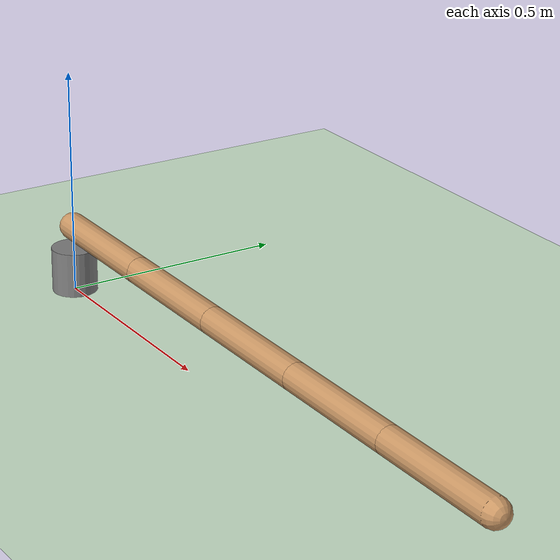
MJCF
<mujoco model="5_arm_pos">
  <compiler angle="radian"/>

  <option integrator="RK4"/>

  <visual>
    <map znear="0.02"/>
  </visual>

  <default>
        <default class="link1_main"/>
    <default class="link2_main"/>
    <default class="link3_main"/>
    <default class="link4_main"/>
    <default class="link5_main"/>
  </default>

  <asset>
    <texture type="skybox" colorspace="auto" builtin="gradient" rgb1="0.4 0.5 0.6" rgb2="0 0 0" width="100" height="600"/>
    <texture type="cube" colorspace="auto" name="texgeom" builtin="flat" mark="cross" rgb1="0.8 0.6 0.4" rgb2="0.8 0.6 0.4" markrgb="1 1 1" width="127" height="762"/>
    <texture type="2d" colorspace="auto" name="texplane" builtin="checker" rgb1="0 0 0" rgb2="0.8 0.8 0.8" width="100" height="100"/>
    <material name="MatPlane" texture="texplane" texrepeat="60 60" specular="1" shininess="1" reflectance="0.5"/>
    <material name="geom" texture="texgeom" texuniform="true"/>
  </asset>

  <worldbody>
    <geom name="floor" size="20 20 0.125" type="plane" material="MatPlane" rgba="0.8 0.9 0.8 1"/>
    <light pos="0 0 1.3" dir="0 0 -1" type="directional" cutoff="100" exponent="1" diffuse="1 1 1" specular="0.1 0.1 0.1"/>
    <body name="base" pos="0 0 0.05">
      <geom name="base_geom" size="0.05 0.05" type="cylinder"/>
      <site name="tip" pos="0 0 0.1" size="0.01"/>
      <body name="link1_link" pos="0 0 0.1">
        <joint name="link1_joint" pos="0 0 0" axis="0 0 1" limited="false" armature="1" damping="3"/>
        <geom name="link1_geom" size="0.03 0.15" pos="0.15 0 0" quat="0.707107 0 -0.707107 0" type="capsule" condim="1" friction="0.9" solimp="0.8 0.8 0.01" margin="0.001" density="300" rgba="0.8 0.6 0.4 1"/>
        <site name="link1_tip" pos="0.3 0 0" size="0.01" rgba="0 1 0 1"/>
        <body name="link2_link" pos="0.3 0 0">
          <joint name="link2_joint" pos="0 0 0" axis="0 1 0" limited="false" armature="1" damping="3"/>
          <geom name="link2_geom" size="0.03 0.15" pos="0.15 0 0" quat="0.707107 0 -0.707107 0" type="capsule" condim="1" friction="0.9" solimp="0.8 0.8 0.01" margin="0.001" density="300" rgba="0.8 0.6 0.4 1"/>
          <site name="link2_tip" pos="0.3 0 0" size="0.01" rgba="0 1 0 1"/>
          <body name="link3_link" pos="0.3 0 0">
            <joint name="link3_joint" pos="0 0 0" axis="0 0 1" limited="false" armature="1" damping="3"/>
            <geom name="link3_geom" size="0.03 0.15" pos="0.15 0 0" quat="0.707107 0 -0.707107 0" type="capsule" condim="1" friction="0.9" solimp="0.8 0.8 0.01" margin="0.001" density="300" rgba="0.8 0.6 0.4 1"/>
            <site name="link3_tip" pos="0.3 0 0" size="0.01" rgba="0 1 0 1"/>
            <body name="link4_link" pos="0.3 0 0">
              <joint name="link4_joint" pos="0 0 0" axis="0 1 0" limited="false" armature="1" damping="3"/>
              <geom name="link4_geom" size="0.03 0.15" pos="0.15 0 0" quat="0.707107 0 -0.707107 0" type="capsule" condim="1" friction="0.9" solimp="0.8 0.8 0.01" margin="0.001" density="300" rgba="0.8 0.6 0.4 1"/>
              <site name="link4_tip" pos="0.3 0 0" size="0.01" rgba="0 1 0 1"/>
              <body name="link5_link" pos="0.3 0 0">
                <joint name="link5_joint" pos="0 0 0" axis="0 0 1" limited="false" armature="1" damping="3"/>
                <geom name="link5_geom" size="0.03 0.15" pos="0.15 0 0" quat="0.707107 0 -0.707107 0" type="capsule" condim="1" friction="0.9" solimp="0.8 0.8 0.01" margin="0.001" density="300" rgba="0.8 0.6 0.4 1"/>
                <site name="link5_ee_frame" pos="0.3 0 0" size="0.01" rgba="0 1 0 1"/>
              </body>
            </body>
          </body>
        </body>
      </body>
    </body>
  </worldbody>

  <actuator>
    <general name="link1_act" joint="link1_joint" ctrllimited="true" ctrlrange="-3.14159 3.14159" biastype="affine" gainprm="403.74" biasprm="0 -403.74 -37.37"/>
    <general name="link2_act" joint="link2_joint" ctrllimited="true" ctrlrange="-3.14159 3.14159" biastype="affine" gainprm="403.74" biasprm="0 -403.74 -37.37"/>
    <general name="link3_act" joint="link3_joint" ctrllimited="true" ctrlrange="-3.14159 3.14159" biastype="affine" gainprm="403.74" biasprm="0 -403.74 -37.37"/>
    <general name="link4_act" joint="link4_joint" ctrllimited="true" ctrlrange="-3.14159 3.14159" biastype="affine" gainprm="403.74" biasprm="0 -403.74 -37.37"/>
    <general name="link5_act" joint="link5_joint" ctrllimited="true" ctrlrange="-3.14159 3.14159" biastype="affine" gainprm="403.74" biasprm="0 -403.74 -37.37"/>
  </actuator>
</mujoco>
